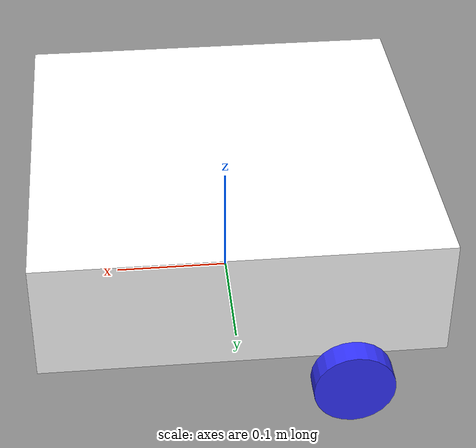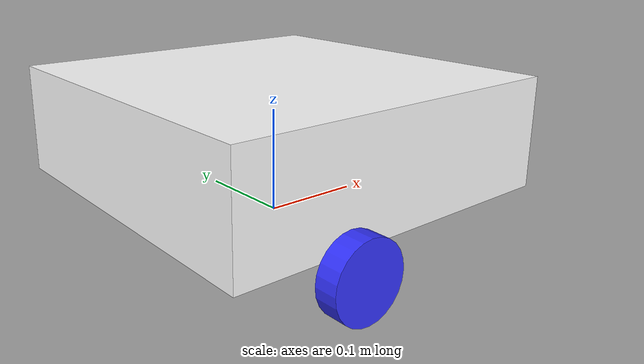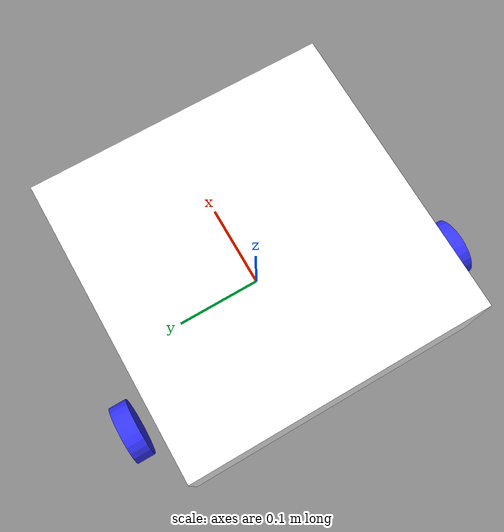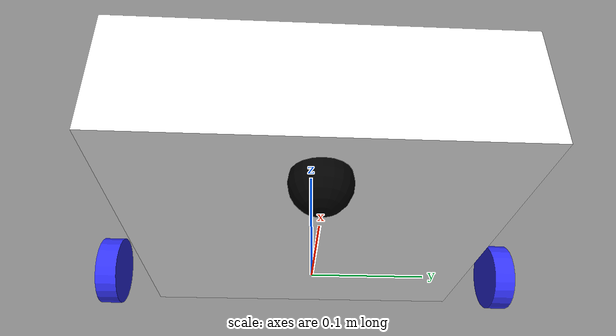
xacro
<?xml version="1.0"?>
<robot xmlns:xacro="http://www.ros.org/wiki/xacro">

  <!-- Constants -->
  <xacro:property name="pi_const" value="3.141592653589793"/>

  <!-- Materials -->
  <material name="white">
    <color rgba="1 1 1 1"/>
  </material>
  <material name="orange">
    <color rgba="1 0.3 0.1 1"/>
  </material>
  <material name="blue">
    <color rgba="0.2 0.2 1 1"/>
  </material>
  <material name="black">
    <color rgba="0 0 0 1"/>
  </material>

  <!-- BASE LINK - Root coordinate frame, no inertia needed -->
  <link name="base_link">
  </link>

  <!-- CHASSIS - Roomba 105 specs: 0.336m × 0.335m × 0.104m (33.6cm × 33.5cm × 10.4cm), ~2.84kg -->
  <joint name="chassis_joint" type="fixed">
    <parent link="base_link"/>
    <child link="chassis"/>
    <origin xyz="0 0 0" rpy="0 0 0"/>
  </joint>

  <link name="chassis">
    <!-- Chassis geometry: centered at z=0.085m (bottom at z=0.033m, wheel center) -->
    <visual>
      <origin xyz="0 0 0.085" rpy="0 0 0"/>
      <geometry>
        <box size="0.336 0.335 0.104"/>
      </geometry>
      <material name="white"/>
    </visual>
    <collision>
      <origin xyz="0 0 0.085" rpy="0 0 0"/>
      <geometry>
        <box size="0.336 0.335 0.104"/>
      </geometry>
    </collision>
    <xacro:inertial_box mass="2.0" x="0.336" y="0.335" z="0.104">
      <origin xyz="-0.02 0 0.085" rpy="0 0 0"/>
    </xacro:inertial_box>
  </link>

  <!-- LEFT WHEEL - EXTERNAL MOUNTING, HALF-EMBEDDED, positioned halfway between middle and back -->
  <!-- FIXED: Moved rear wheels forward to x=-0.084m (halfway between middle and back) -->
  <joint name="left_wheel_joint" type="continuous">
    <parent link="base_link"/>
    <child link="left_wheel"/>
    <origin xyz="-0.084 0.20 0.033" rpy="0 0 0"/>
    <!-- Rotation axis: Y-axis - positive rotation moves robot forward -->
    <axis xyz="0 1 0"/>
  </joint>

  <link name="left_wheel">
    <visual>
      <!-- Rotate 90° around X-axis (π/2 = 1.5708 rad) to make wheel VERTICAL and rollable -->
      <!-- This makes the cylinder stand upright so it can roll like a real wheel -->
      <origin xyz="0 0 0" rpy="1.5708 0 0"/>
      <geometry>
        <!-- Cylinder: length=0.02m (width/thickness), radius=0.033m - Roomba 105 specs -->
        <!-- After X-axis rotation, cylinder stands vertically (Z-axis) -->
        <cylinder length="0.02" radius="0.033"/>
      </geometry>
      <material name="blue"/>
    </visual>
    <collision>
      <!-- Same rotation for collision geometry - wheel must be vertical -->
      <origin xyz="0 0 0" rpy="1.5708 0 0"/>
      <geometry>
        <cylinder length="0.02" radius="0.033"/>
      </geometry>
    </collision>
    <!-- FIXED: Wheel mass: 0.2kg each (reduced from 0.3kg to prevent rear-heavy balance) -->
    <!-- Inertia: cylinder with length=0.02m (width), radius=0.033m -->
    <!-- Note: Inertial frame should NOT be rotated - rotation is only for visual/collision -->
    <xacro:inertial_cylinder mass="0.2" length="0.02" radius="0.033">
      <origin xyz="0 0 0" rpy="0 0 0"/>
    </xacro:inertial_cylinder>
  </link>

  <!-- RIGHT WHEEL - EXTERNAL MOUNTING, HALF-EMBEDDED, positioned halfway between middle and back -->
  <!-- FIXED: Moved rear wheels forward to x=-0.084m (halfway between middle and back) -->
  <!-- FIXED: Both wheels use same axis direction (0 1 0) to prevent spinning in circles -->
  <joint name="right_wheel_joint" type="continuous">
    <parent link="base_link"/>
    <child link="right_wheel"/>
    <origin xyz="-0.084 -0.20 0.033" rpy="0 0 0"/>
    <!-- Rotation axis: Y-axis - same as left wheel (0 1 0), Gazebo plugin handles differential drive logic -->
    <axis xyz="0 1 0"/>
  </joint>

  <link name="right_wheel">
    <visual>
      <!-- Rotate 90° around X-axis (π/2 = 1.5708 rad) to make wheel VERTICAL and rollable -->
      <!-- This makes the cylinder stand upright so it can roll like a real wheel -->
      <origin xyz="0 0 0" rpy="1.5708 0 0"/>
      <geometry>
        <!-- Cylinder: length=0.02m (width/thickness), radius=0.033m - Roomba 105 specs -->
        <!-- After X-axis rotation, cylinder stands vertically (Z-axis) -->
        <cylinder length="0.02" radius="0.033"/>
      </geometry>
      <material name="blue"/>
    </visual>
    <collision>
      <!-- Same rotation for collision geometry - wheel must be vertical -->
      <origin xyz="0 0 0" rpy="1.5708 0 0"/>
      <geometry>
        <cylinder length="0.02" radius="0.033"/>
      </geometry>
    </collision>
    <!-- FIXED: Wheel mass: 0.2kg each (reduced from 0.3kg to prevent rear-heavy balance) -->
    <!-- Inertia: cylinder with length=0.02m (width), radius=0.033m -->
    <!-- Note: Inertial frame should NOT be rotated - rotation is only for visual/collision -->
    <xacro:inertial_cylinder mass="0.2" length="0.02" radius="0.033">
      <origin xyz="0 0 0" rpy="0 0 0"/>
    </xacro:inertial_cylinder>
  </link>

  <!-- CASTER WHEEL - Front center caster wheel (proper Roomba configuration) -->
  <joint name="caster_wheel_joint" type="fixed">
    <parent link="base_link"/>
    <child link="caster_wheel"/>
    <origin xyz="0.12 0 0.025" rpy="0 0 0"/>
  </joint>

  <link name="caster_wheel">
    <visual>
      <origin xyz="0 0 0" rpy="0 0 0"/>
      <geometry>
        <!-- Larger caster wheel - matching assignment brief -->
        <sphere radius="0.025"/>
      </geometry>
      <material name="black"/>
    </visual>
    <collision>
      <origin xyz="0 0 0" rpy="0 0 0"/>
      <geometry>
        <sphere radius="0.025"/>
      </geometry>
    </collision>
    <!-- FIXED: Caster mass: 0.4kg (increased for better front support to prevent backward tilt) -->
    <xacro:inertial_sphere mass="0.4" radius="0.025">
      <origin xyz="0 0 0" rpy="0 0 0"/>
    </xacro:inertial_sphere>
  </link>

  <!-- Gazebo plugins for differential drive -->
  <gazebo reference="base_link">
  </gazebo>

  <!-- Remove joint properties from caster - not needed for fixed joint -->

  <gazebo reference="chassis">
    <material>Gazebo/White</material>
    <friction>
      <ode>
        <mu>0.6</mu>
        <mu2>0.6</mu2>
      </ode>
    </friction>
  </gazebo>

  <gazebo reference="left_wheel">
    <material>Gazebo/Blue</material>
    <friction>
      <ode>
        <mu>0.8</mu>
        <mu2>0.8</mu2>
        <slip1>0.01</slip1>
        <slip2>0.01</slip2>
      </ode>
    </friction>
  </gazebo>

  <gazebo reference="right_wheel">
    <material>Gazebo/Blue</material>
    <friction>
      <ode>
        <mu>0.8</mu>
        <mu2>0.8</mu2>
        <slip1>0.01</slip1>
        <slip2>0.01</slip2>
      </ode>
    </friction>
  </gazebo>

  <gazebo reference="caster_wheel">
    <material>Gazebo/Black</material>
    <friction>
      <ode>
        <mu>0.01</mu>
        <mu2>0.01</mu2>
      </ode>
    </friction>
    <!-- Prevent self-collision issues that might cause detachment -->
    <selfCollide>false</selfCollide>
  </gazebo>

  <!-- FIXED: Strengthen caster joint to prevent detachment - enhanced properties -->
  <gazebo reference="caster_wheel_joint">
    <preserveWorldPose>true</preserveWorldPose>
    <implicitSpringDamper>true</implicitSpringDamper>
    <provideFeedback>true</provideFeedback>
    <physics>
      <ode>
        <implicit_spring_damper>true</implicit_spring_damper>
        <cfm>0.00001</cfm>
        <erp>0.2</erp>
      </ode>
    </physics>
  </gazebo>

</robot>
